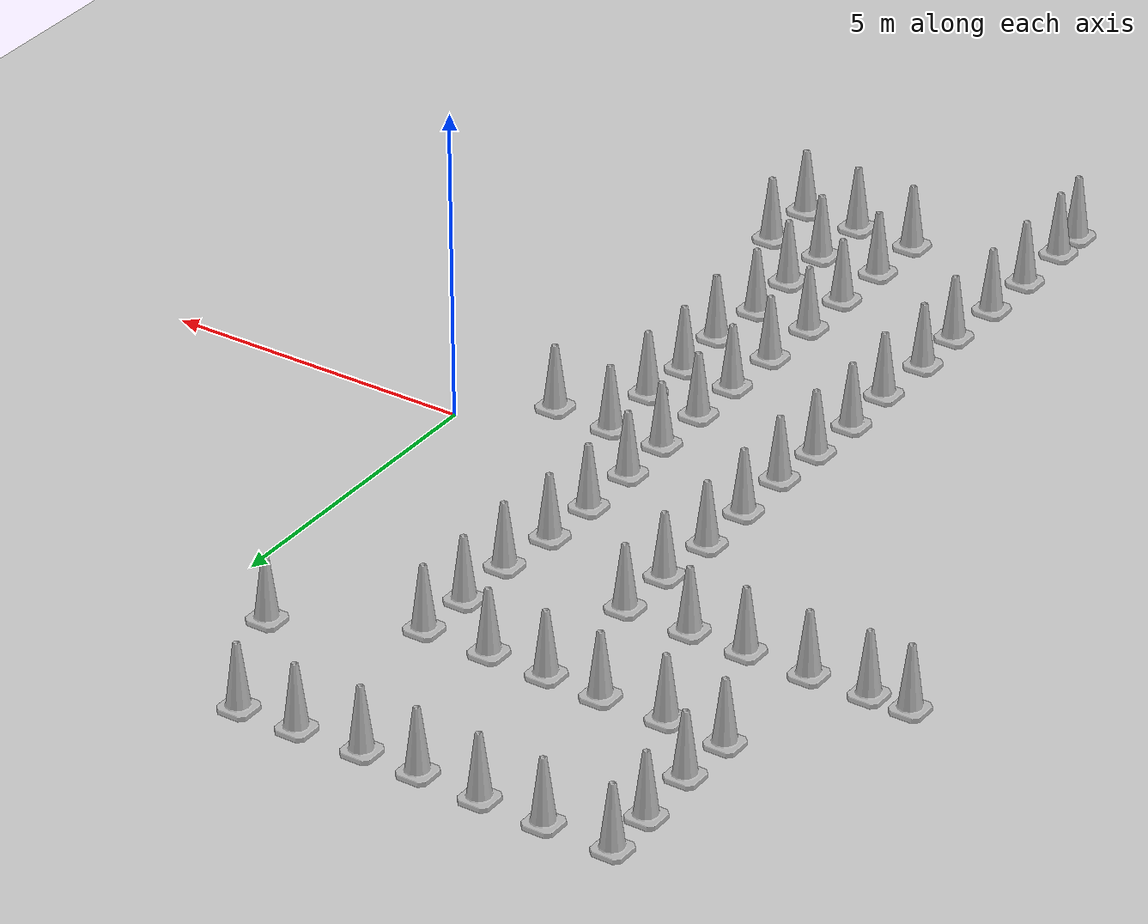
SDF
<sdf version="1.7">
 <world name="default">
  <model name="ground_plane">
   <static>1</static>
   <link name="link">
    <collision name="collision">
     <geometry><plane><normal>0 0 1</normal><size>100 100</size></plane></geometry>
     <surface>
      <contact><collide_bitmask>65535</collide_bitmask></contact>
      <friction><ode><mu>100</mu><mu2>50</mu2></ode></friction>
     </surface>
    </collision>
    <visual name="visual">
     <cast_shadows>0</cast_shadows>
     <geometry><plane><normal>0 0 1</normal><size>100 100</size></plane></geometry>
     <material>
      <script><uri>file://media/materials/scripts/gazebo.material</uri><name>Gazebo/Grey</name></script>
     </material>
    </visual>
   </link>
  </model>
  <model name="Construction Cone">
   <link name="link">
    <collision name="collision">
     <geometry>
      <mesh><scale>10 10 10</scale><uri>model://construction_cone/meshes/construction_cone.dae</uri></mesh>
     </geometry>
    </collision>
    <visual name="visual">
     <geometry>
      <mesh><scale>10 10 10</scale><uri>model://construction_cone/meshes/construction_cone.dae</uri></mesh>
     </geometry>
    </visual>
    <inertial>
     <inertia><ixx>1</ixx><ixy>0</ixy><ixz>0</ixz><iyy>1</iyy><iyz>0</iyz><izz>1</izz></inertia>
     <mass>1</mass>
    </inertial>
   </link>
   <pose>-1.01799 5.99458 -6e-06 -4e-06 1e-06 0</pose>
  </model>
  <model name="Construction Cone_clone_7">
   <link name="link">
    <collision name="collision">
     <geometry>
      <mesh><scale>10 10 10</scale><uri>model://construction_cone/meshes/construction_cone.dae</uri></mesh>
     </geometry>
    </collision>
    <visual name="visual">
     <geometry>
      <mesh><scale>10 10 10</scale><uri>model://construction_cone/meshes/construction_cone.dae</uri></mesh>
     </geometry>
    </visual>
    <inertial>
     <inertia><ixx>1</ixx><ixy>0</ixy><ixz>0</ixz><iyy>1</iyy><iyz>0</iyz><izz>1</izz></inertia>
     <mass>1</mass>
    </inertial>
   </link>
   <pose>-2.01651 7.99245 -0 0 -0 0</pose>
  </model>
  <model name="Construction Cone_clone_8">
   <link name="link">
    <collision name="collision">
     <geometry>
      <mesh><scale>10 10 10</scale><uri>model://construction_cone/meshes/construction_cone.dae</uri></mesh>
     </geometry>
    </collision>
    <visual name="visual">
     <geometry>
      <mesh><scale>10 10 10</scale><uri>model://construction_cone/meshes/construction_cone.dae</uri></mesh>
     </geometry>
    </visual>
    <inertial>
     <inertia><ixx>1</ixx><ixy>0</ixy><ixz>0</ixz><iyy>1</iyy><iyz>0</iyz><izz>1</izz></inertia>
     <mass>1</mass>
    </inertial>
   </link>
   <pose>-2.97184 7.96469 -8e-06 -6e-06 -0 -0</pose>
  </model>
  <model name="Construction Cone_clone_13">
   <link name="link">
    <collision name="collision">
     <geometry>
      <mesh><scale>10 10 10</scale><uri>model://construction_cone/meshes/construction_cone.dae</uri></mesh>
     </geometry>
    </collision>
    <visual name="visual">
     <geometry>
      <mesh><scale>10 10 10</scale><uri>model://construction_cone/meshes/construction_cone.dae</uri></mesh>
     </geometry>
    </visual>
    <inertial>
     <inertia><ixx>1</ixx><ixy>0</ixy><ixz>0</ixz><iyy>1</iyy><iyz>0</iyz><izz>1</izz></inertia>
     <mass>1</mass>
    </inertial>
   </link>
   <pose>-4.02289 7.91677 0 -0 -0 -0</pose>
  </model>
  <model name="Construction Cone_clone_14">
   <link name="link">
    <collision name="collision">
     <geometry>
      <mesh><scale>10 10 10</scale><uri>model://construction_cone/meshes/construction_cone.dae</uri></mesh>
     </geometry>
    </collision>
    <visual name="visual">
     <geometry>
      <mesh><scale>10 10 10</scale><uri>model://construction_cone/meshes/construction_cone.dae</uri></mesh>
     </geometry>
    </visual>
    <inertial>
     <inertia><ixx>1</ixx><ixy>0</ixy><ixz>0</ixz><iyy>1</iyy><iyz>0</iyz><izz>1</izz></inertia>
     <mass>1</mass>
    </inertial>
   </link>
   <pose>-4.94608 7.91863 -0 0 -0 0</pose>
  </model>
  <model name="Construction Cone_clone_15">
   <link name="link">
    <collision name="collision">
     <geometry>
      <mesh><scale>10 10 10</scale><uri>model://construction_cone/meshes/construction_cone.dae</uri></mesh>
     </geometry>
    </collision>
    <visual name="visual">
     <geometry>
      <mesh><scale>10 10 10</scale><uri>model://construction_cone/meshes/construction_cone.dae</uri></mesh>
     </geometry>
    </visual>
    <inertial>
     <inertia><ixx>1</ixx><ixy>0</ixy><ixz>0</ixz><iyy>1</iyy><iyz>0</iyz><izz>1</izz></inertia>
     <mass>1</mass>
    </inertial>
   </link>
   <pose>-5.97959 7.95857 -0 0 -0 0</pose>
  </model>
  <model name="Construction Cone_clone_16">
   <link name="link">
    <collision name="collision">
     <geometry>
      <mesh><scale>10 10 10</scale><uri>model://construction_cone/meshes/construction_cone.dae</uri></mesh>
     </geometry>
    </collision>
    <visual name="visual">
     <geometry>
      <mesh><scale>10 10 10</scale><uri>model://construction_cone/meshes/construction_cone.dae</uri></mesh>
     </geometry>
    </visual>
    <inertial>
     <inertia><ixx>1</ixx><ixy>0</ixy><ixz>0</ixz><iyy>1</iyy><iyz>0</iyz><izz>1</izz></inertia>
     <mass>1</mass>
    </inertial>
   </link>
   <pose>-7.01345 7.96661 -4e-06 4e-06 -1e-06 0</pose>
  </model>
  <model name="Construction Cone_clone_16_clone">
   <link name="link">
    <collision name="collision">
     <geometry>
      <mesh><scale>10 10 10</scale><uri>model://construction_cone/meshes/construction_cone.dae</uri></mesh>
     </geometry>
    </collision>
    <visual name="visual">
     <geometry>
      <mesh><scale>10 10 10</scale><uri>model://construction_cone/meshes/construction_cone.dae</uri></mesh>
     </geometry>
    </visual>
    <inertial>
     <inertia><ixx>1</ixx><ixy>0</ixy><ixz>0</ixz><iyy>1</iyy><iyz>0</iyz><izz>1</izz></inertia>
     <mass>1</mass>
    </inertial>
   </link>
   <pose>-8.10158 7.95749 0 -0 -0 -0</pose>
  </model>
  <model name="Construction Cone_clone_16_clone_0">
   <link name="link">
    <collision name="collision">
     <geometry>
      <mesh><scale>10 10 10</scale><uri>model://construction_cone/meshes/construction_cone.dae</uri></mesh>
     </geometry>
    </collision>
    <visual name="visual">
     <geometry>
      <mesh><scale>10 10 10</scale><uri>model://construction_cone/meshes/construction_cone.dae</uri></mesh>
     </geometry>
    </visual>
    <inertial>
     <inertia><ixx>1</ixx><ixy>0</ixy><ixz>0</ixz><iyy>1</iyy><iyz>0</iyz><izz>1</izz></inertia>
     <mass>1</mass>
    </inertial>
   </link>
   <pose>-8.05367 7.08406 -0 0 -0 0</pose>
  </model>
  <model name="Construction Cone_clone_16_clone_1">
   <link name="link">
    <collision name="collision">
     <geometry>
      <mesh><scale>10 10 10</scale><uri>model://construction_cone/meshes/construction_cone.dae</uri></mesh>
     </geometry>
    </collision>
    <visual name="visual">
     <geometry>
      <mesh><scale>10 10 10</scale><uri>model://construction_cone/meshes/construction_cone.dae</uri></mesh>
     </geometry>
    </visual>
    <inertial>
     <inertia><ixx>1</ixx><ixy>0</ixy><ixz>0</ixz><iyy>1</iyy><iyz>0</iyz><izz>1</izz></inertia>
     <mass>1</mass>
    </inertial>
   </link>
   <pose>-7.96652 6.00536 -0 0 -0 0</pose>
  </model>
  <model name="Construction Cone_clone_16_clone_2">
   <link name="link">
    <collision name="collision">
     <geometry>
      <mesh><scale>10 10 10</scale><uri>model://construction_cone/meshes/construction_cone.dae</uri></mesh>
     </geometry>
    </collision>
    <visual name="visual">
     <geometry>
      <mesh><scale>10 10 10</scale><uri>model://construction_cone/meshes/construction_cone.dae</uri></mesh>
     </geometry>
    </visual>
    <inertial>
     <inertia><ixx>1</ixx><ixy>0</ixy><ixz>0</ixz><iyy>1</iyy><iyz>0</iyz><izz>1</izz></inertia>
     <mass>1</mass>
    </inertial>
   </link>
   <pose>-7.98786 5.06189 -1e-06 2e-06 2e-06 0</pose>
  </model>
  <model name="Construction Cone_clone_16_clone_3">
   <link name="link">
    <collision name="collision">
     <geometry>
      <mesh><scale>10 10 10</scale><uri>model://construction_cone/meshes/construction_cone.dae</uri></mesh>
     </geometry>
    </collision>
    <visual name="visual">
     <geometry>
      <mesh><scale>10 10 10</scale><uri>model://construction_cone/meshes/construction_cone.dae</uri></mesh>
     </geometry>
    </visual>
    <inertial>
     <inertia><ixx>1</ixx><ixy>0</ixy><ixz>0</ixz><iyy>1</iyy><iyz>0</iyz><izz>1</izz></inertia>
     <mass>1</mass>
    </inertial>
   </link>
   <pose>-7.00541 5.00946 -0 0 -1e-06 0</pose>
  </model>
  <model name="Construction Cone_clone_16_clone_4">
   <link name="link">
    <collision name="collision">
     <geometry>
      <mesh><scale>10 10 10</scale><uri>model://construction_cone/meshes/construction_cone.dae</uri></mesh>
     </geometry>
    </collision>
    <visual name="visual">
     <geometry>
      <mesh><scale>10 10 10</scale><uri>model://construction_cone/meshes/construction_cone.dae</uri></mesh>
     </geometry>
    </visual>
    <inertial>
     <inertia><ixx>1</ixx><ixy>0</ixy><ixz>0</ixz><iyy>1</iyy><iyz>0</iyz><izz>1</izz></inertia>
     <mass>1</mass>
    </inertial>
   </link>
   <pose>-5.95433 5.0353 -0 0 -0 0</pose>
  </model>
  <model name="Construction Cone_clone_16_clone_5">
   <link name="link">
    <collision name="collision">
     <geometry>
      <mesh><scale>10 10 10</scale><uri>model://construction_cone/meshes/construction_cone.dae</uri></mesh>
     </geometry>
    </collision>
    <visual name="visual">
     <geometry>
      <mesh><scale>10 10 10</scale><uri>model://construction_cone/meshes/construction_cone.dae</uri></mesh>
     </geometry>
    </visual>
    <inertial>
     <inertia><ixx>1</ixx><ixy>0</ixy><ixz>0</ixz><iyy>1</iyy><iyz>0</iyz><izz>1</izz></inertia>
     <mass>1</mass>
    </inertial>
   </link>
   <pose>-5.03599 5.00389 -0 0 -0 0</pose>
  </model>
  <model name="Construction Cone_clone_16_clone_6">
   <link name="link">
    <collision name="collision">
     <geometry>
      <mesh><scale>10 10 10</scale><uri>model://construction_cone/meshes/construction_cone.dae</uri></mesh>
     </geometry>
    </collision>
    <visual name="visual">
     <geometry>
      <mesh><scale>10 10 10</scale><uri>model://construction_cone/meshes/construction_cone.dae</uri></mesh>
     </geometry>
    </visual>
    <inertial>
     <inertia><ixx>1</ixx><ixy>0</ixy><ixz>0</ixz><iyy>1</iyy><iyz>0</iyz><izz>1</izz></inertia>
     <mass>1</mass>
    </inertial>
   </link>
   <pose>-4.06945 4.98758 -0 0 -1e-06 0</pose>
  </model>
  <model name="Construction Cone_clone_16_clone_7">
   <link name="link">
    <collision name="collision">
     <geometry>
      <mesh><scale>10 10 10</scale><uri>model://construction_cone/meshes/construction_cone.dae</uri></mesh>
     </geometry>
    </collision>
    <visual name="visual">
     <geometry>
      <mesh><scale>10 10 10</scale><uri>model://construction_cone/meshes/construction_cone.dae</uri></mesh>
     </geometry>
    </visual>
    <inertial>
     <inertia><ixx>1</ixx><ixy>0</ixy><ixz>0</ixz><iyy>1</iyy><iyz>0</iyz><izz>1</izz></inertia>
     <mass>1</mass>
    </inertial>
   </link>
   <pose>-2.98074 4.99101 -5e-06 -4e-06 1e-06 0</pose>
  </model>
  <model name="Construction Cone_clone_16_clone_8">
   <link name="link">
    <collision name="collision">
     <geometry>
      <mesh><scale>10 10 10</scale><uri>model://construction_cone/meshes/construction_cone.dae</uri></mesh>
     </geometry>
    </collision>
    <visual name="visual">
     <geometry>
      <mesh><scale>10 10 10</scale><uri>model://construction_cone/meshes/construction_cone.dae</uri></mesh>
     </geometry>
    </visual>
    <inertial>
     <inertia><ixx>1</ixx><ixy>0</ixy><ixz>0</ixz><iyy>1</iyy><iyz>0</iyz><izz>1</izz></inertia>
     <mass>1</mass>
    </inertial>
   </link>
   <pose>-3.01413 4.06515 0 -0 -0 -0</pose>
  </model>
  <model name="Construction Cone_clone_16_clone_9">
   <link name="link">
    <collision name="collision">
     <geometry>
      <mesh><scale>10 10 10</scale><uri>model://construction_cone/meshes/construction_cone.dae</uri></mesh>
     </geometry>
    </collision>
    <visual name="visual">
     <geometry>
      <mesh><scale>10 10 10</scale><uri>model://construction_cone/meshes/construction_cone.dae</uri></mesh>
     </geometry>
    </visual>
    <inertial>
     <inertia><ixx>1</ixx><ixy>0</ixy><ixz>0</ixz><iyy>1</iyy><iyz>0</iyz><izz>1</izz></inertia>
     <mass>1</mass>
    </inertial>
   </link>
   <pose>-2.97922 3.02528 -0 0 -0 0</pose>
  </model>
  <model name="Construction Cone_clone_16_clone_10">
   <link name="link">
    <collision name="collision">
     <geometry>
      <mesh><scale>10 10 10</scale><uri>model://construction_cone/meshes/construction_cone.dae</uri></mesh>
     </geometry>
    </collision>
    <visual name="visual">
     <geometry>
      <mesh><scale>10 10 10</scale><uri>model://construction_cone/meshes/construction_cone.dae</uri></mesh>
     </geometry>
    </visual>
    <inertial>
     <inertia><ixx>1</ixx><ixy>0</ixy><ixz>0</ixz><iyy>1</iyy><iyz>0</iyz><izz>1</izz></inertia>
     <mass>1</mass>
    </inertial>
   </link>
   <pose>-3.08255 2.04324 -0 0 -0 0</pose>
  </model>
  <model name="Construction Cone_clone_16_clone_11">
   <link name="link">
    <collision name="collision">
     <geometry>
      <mesh><scale>10 10 10</scale><uri>model://construction_cone/meshes/construction_cone.dae</uri></mesh>
     </geometry>
    </collision>
    <visual name="visual">
     <geometry>
      <mesh><scale>10 10 10</scale><uri>model://construction_cone/meshes/construction_cone.dae</uri></mesh>
     </geometry>
    </visual>
    <inertial>
     <inertia><ixx>1</ixx><ixy>0</ixy><ixz>0</ixz><iyy>1</iyy><iyz>0</iyz><izz>1</izz></inertia>
     <mass>1</mass>
    </inertial>
   </link>
   <pose>-3.08639 1.06079 0 -0 -0 -0</pose>
  </model>
  <model name="Construction Cone_clone_16_clone_12">
   <link name="link">
    <collision name="collision">
     <geometry>
      <mesh><scale>10 10 10</scale><uri>model://construction_cone/meshes/construction_cone.dae</uri></mesh>
     </geometry>
    </collision>
    <visual name="visual">
     <geometry>
      <mesh><scale>10 10 10</scale><uri>model://construction_cone/meshes/construction_cone.dae</uri></mesh>
     </geometry>
    </visual>
    <inertial>
     <inertia><ixx>1</ixx><ixy>0</ixy><ixz>0</ixz><iyy>1</iyy><iyz>0</iyz><izz>1</izz></inertia>
     <mass>1</mass>
    </inertial>
   </link>
   <pose>-3.06053 0.003845 -0 0 -0 0</pose>
  </model>
  <model name="Construction Cone_clone_16_clone_13">
   <link name="link">
    <collision name="collision">
     <geometry>
      <mesh><scale>10 10 10</scale><uri>model://construction_cone/meshes/construction_cone.dae</uri></mesh>
     </geometry>
    </collision>
    <visual name="visual">
     <geometry>
      <mesh><scale>10 10 10</scale><uri>model://construction_cone/meshes/construction_cone.dae</uri></mesh>
     </geometry>
    </visual>
    <inertial>
     <inertia><ixx>1</ixx><ixy>0</ixy><ixz>0</ixz><iyy>1</iyy><iyz>0</iyz><izz>1</izz></inertia>
     <mass>1</mass>
    </inertial>
   </link>
   <pose>-3.01618 -0.949933 0 -0 -0 -0</pose>
  </model>
  <model name="Construction Cone_clone_16_clone_14">
   <link name="link">
    <collision name="collision">
     <geometry>
      <mesh><scale>10 10 10</scale><uri>model://construction_cone/meshes/construction_cone.dae</uri></mesh>
     </geometry>
    </collision>
    <visual name="visual">
     <geometry>
      <mesh><scale>10 10 10</scale><uri>model://construction_cone/meshes/construction_cone.dae</uri></mesh>
     </geometry>
    </visual>
    <inertial>
     <inertia><ixx>1</ixx><ixy>0</ixy><ixz>0</ixz><iyy>1</iyy><iyz>0</iyz><izz>1</izz></inertia>
     <mass>1</mass>
    </inertial>
   </link>
   <pose>-4.95464 -1.09419 -0 0 -1e-06 0</pose>
  </model>
  <model name="Construction Cone_clone_16_clone_15">
   <link name="link">
    <collision name="collision">
     <geometry>
      <mesh><scale>10 10 10</scale><uri>model://construction_cone/meshes/construction_cone.dae</uri></mesh>
     </geometry>
    </collision>
    <visual name="visual">
     <geometry>
      <mesh><scale>10 10 10</scale><uri>model://construction_cone/meshes/construction_cone.dae</uri></mesh>
     </geometry>
    </visual>
    <inertial>
     <inertia><ixx>1</ixx><ixy>0</ixy><ixz>0</ixz><iyy>1</iyy><iyz>0</iyz><izz>1</izz></inertia>
     <mass>1</mass>
    </inertial>
   </link>
   <pose>-5.00732 -0.05172 -1e-05 -0 -0 -0</pose>
  </model>
  <model name="Construction Cone_clone_16_clone_16">
   <link name="link">
    <collision name="collision">
     <geometry>
      <mesh><scale>10 10 10</scale><uri>model://construction_cone/meshes/construction_cone.dae</uri></mesh>
     </geometry>
    </collision>
    <visual name="visual">
     <geometry>
      <mesh><scale>10 10 10</scale><uri>model://construction_cone/meshes/construction_cone.dae</uri></mesh>
     </geometry>
    </visual>
    <inertial>
     <inertia><ixx>1</ixx><ixy>0</ixy><ixz>0</ixz><iyy>1</iyy><iyz>0</iyz><izz>1</izz></inertia>
     <mass>1</mass>
    </inertial>
   </link>
   <pose>-5.04654 0.972501 -1e-05 0 -0 0</pose>
  </model>
  <model name="Construction Cone_clone_16_clone_17">
   <link name="link">
    <collision name="collision">
     <geometry>
      <mesh><scale>10 10 10</scale><uri>model://construction_cone/meshes/construction_cone.dae</uri></mesh>
     </geometry>
    </collision>
    <visual name="visual">
     <geometry>
      <mesh><scale>10 10 10</scale><uri>model://construction_cone/meshes/construction_cone.dae</uri></mesh>
     </geometry>
    </visual>
    <inertial>
     <inertia><ixx>1</ixx><ixy>0</ixy><ixz>0</ixz><iyy>1</iyy><iyz>0</iyz><izz>1</izz></inertia>
     <mass>1</mass>
    </inertial>
   </link>
   <pose>-4.99937 1.99483 -0 0 -1e-06 0</pose>
  </model>
  <model name="Construction Cone_clone_16_clone_18">
   <link name="link">
    <collision name="collision">
     <geometry>
      <mesh><scale>10 10 10</scale><uri>model://construction_cone/meshes/construction_cone.dae</uri></mesh>
     </geometry>
    </collision>
    <visual name="visual">
     <geometry>
      <mesh><scale>10 10 10</scale><uri>model://construction_cone/meshes/construction_cone.dae</uri></mesh>
     </geometry>
    </visual>
    <inertial>
     <inertia><ixx>1</ixx><ixy>0</ixy><ixz>0</ixz><iyy>1</iyy><iyz>0</iyz><izz>1</izz></inertia>
     <mass>1</mass>
    </inertial>
   </link>
   <pose>-4.99962 2.99472 0 -0 -0 -0</pose>
  </model>
  <model name="Construction Cone_clone_16_clone_19">
   <link name="link">
    <collision name="collision">
     <geometry>
      <mesh><scale>10 10 10</scale><uri>model://construction_cone/meshes/construction_cone.dae</uri></mesh>
     </geometry>
    </collision>
    <visual name="visual">
     <geometry>
      <mesh><scale>10 10 10</scale><uri>model://construction_cone/meshes/construction_cone.dae</uri></mesh>
     </geometry>
    </visual>
    <inertial>
     <inertia><ixx>1</ixx><ixy>0</ixy><ixz>0</ixz><iyy>1</iyy><iyz>0</iyz><izz>1</izz></inertia>
     <mass>1</mass>
    </inertial>
   </link>
   <pose>-6.0715 2.99243 -0 0 -1e-06 0</pose>
  </model>
  <model name="Construction Cone_clone_16_clone_20">
   <link name="link">
    <collision name="collision">
     <geometry>
      <mesh><scale>10 10 10</scale><uri>model://construction_cone/meshes/construction_cone.dae</uri></mesh>
     </geometry>
    </collision>
    <visual name="visual">
     <geometry>
      <mesh><scale>10 10 10</scale><uri>model://construction_cone/meshes/construction_cone.dae</uri></mesh>
     </geometry>
    </visual>
    <inertial>
     <inertia><ixx>1</ixx><ixy>0</ixy><ixz>0</ixz><iyy>1</iyy><iyz>0</iyz><izz>1</izz></inertia>
     <mass>1</mass>
    </inertial>
   </link>
   <pose>-7 3 0 -0 -0 -0</pose>
  </model>
  <model name="Construction Cone_clone_16_clone_21">
   <link name="link">
    <collision name="collision">
     <geometry>
      <mesh><scale>10 10 10</scale><uri>model://construction_cone/meshes/construction_cone.dae</uri></mesh>
     </geometry>
    </collision>
    <visual name="visual">
     <geometry>
      <mesh><scale>10 10 10</scale><uri>model://construction_cone/meshes/construction_cone.dae</uri></mesh>
     </geometry>
    </visual>
    <inertial>
     <inertia><ixx>1</ixx><ixy>0</ixy><ixz>0</ixz><iyy>1</iyy><iyz>0</iyz><izz>1</izz></inertia>
     <mass>1</mass>
    </inertial>
   </link>
   <pose>-8.03271 3.01123 -0 0 -1e-06 0</pose>
  </model>
  <model name="Construction Cone_clone_16_clone_22">
   <link name="link">
    <collision name="collision">
     <geometry>
      <mesh><scale>10 10 10</scale><uri>model://construction_cone/meshes/construction_cone.dae</uri></mesh>
     </geometry>
    </collision>
    <visual name="visual">
     <geometry>
      <mesh><scale>10 10 10</scale><uri>model://construction_cone/meshes/construction_cone.dae</uri></mesh>
     </geometry>
    </visual>
    <inertial>
     <inertia><ixx>1</ixx><ixy>0</ixy><ixz>0</ixz><iyy>1</iyy><iyz>0</iyz><izz>1</izz></inertia>
     <mass>1</mass>
    </inertial>
   </link>
   <pose>-8.98005 2.97926 -0 0 -1e-06 0</pose>
  </model>
  <model name="Construction Cone_clone_16_clone_23">
   <link name="link">
    <collision name="collision">
     <geometry>
      <mesh><scale>10 10 10</scale><uri>model://construction_cone/meshes/construction_cone.dae</uri></mesh>
     </geometry>
    </collision>
    <visual name="visual">
     <geometry>
      <mesh><scale>10 10 10</scale><uri>model://construction_cone/meshes/construction_cone.dae</uri></mesh>
     </geometry>
    </visual>
    <inertial>
     <inertia><ixx>1</ixx><ixy>0</ixy><ixz>0</ixz><iyy>1</iyy><iyz>0</iyz><izz>1</izz></inertia>
     <mass>1</mass>
    </inertial>
   </link>
   <pose>-9.63265 2.96495 -0 0 -0 0</pose>
  </model>
  <model name="Construction Cone_clone_16_clone_24">
   <link name="link">
    <collision name="collision">
     <geometry>
      <mesh><scale>10 10 10</scale><uri>model://construction_cone/meshes/construction_cone.dae</uri></mesh>
     </geometry>
    </collision>
    <visual name="visual">
     <geometry>
      <mesh><scale>10 10 10</scale><uri>model://construction_cone/meshes/construction_cone.dae</uri></mesh>
     </geometry>
    </visual>
    <inertial>
     <inertia><ixx>1</ixx><ixy>0</ixy><ixz>0</ixz><iyy>1</iyy><iyz>0</iyz><izz>1</izz></inertia>
     <mass>1</mass>
    </inertial>
   </link>
   <pose>-5 -2 -0 0 -0 0</pose>
  </model>
  <model name="Construction Cone_clone_16_clone_25">
   <link name="link">
    <collision name="collision">
     <geometry>
      <mesh><scale>10 10 10</scale><uri>model://construction_cone/meshes/construction_cone.dae</uri></mesh>
     </geometry>
    </collision>
    <visual name="visual">
     <geometry>
      <mesh><scale>10 10 10</scale><uri>model://construction_cone/meshes/construction_cone.dae</uri></mesh>
     </geometry>
    </visual>
    <inertial>
     <inertia><ixx>1</ixx><ixy>0</ixy><ixz>0</ixz><iyy>1</iyy><iyz>0</iyz><izz>1</izz></inertia>
     <mass>1</mass>
    </inertial>
   </link>
   <pose>-2.9971 -1.95587 -0 -0 -0 -0</pose>
  </model>
  <model name="Construction Cone_clone_16_clone_26">
   <link name="link">
    <collision name="collision">
     <geometry>
      <mesh><scale>10 10 10</scale><uri>model://construction_cone/meshes/construction_cone.dae</uri></mesh>
     </geometry>
    </collision>
    <visual name="visual">
     <geometry>
      <mesh><scale>10 10 10</scale><uri>model://construction_cone/meshes/construction_cone.dae</uri></mesh>
     </geometry>
    </visual>
    <inertial>
     <inertia><ixx>1</ixx><ixy>0</ixy><ixz>0</ixz><iyy>1</iyy><iyz>0</iyz><izz>1</izz></inertia>
     <mass>1</mass>
    </inertial>
   </link>
   <pose>-2.9779 -2.90922 -1e-06 3e-06 -1e-06 0</pose>
  </model>
  <model name="Construction Cone_clone_16_clone_27">
   <link name="link">
    <collision name="collision">
     <geometry>
      <mesh><scale>10 10 10</scale><uri>model://construction_cone/meshes/construction_cone.dae</uri></mesh>
     </geometry>
    </collision>
    <visual name="visual">
     <geometry>
      <mesh><scale>10 10 10</scale><uri>model://construction_cone/meshes/construction_cone.dae</uri></mesh>
     </geometry>
    </visual>
    <inertial>
     <inertia><ixx>1</ixx><ixy>0</ixy><ixz>0</ixz><iyy>1</iyy><iyz>0</iyz><izz>1</izz></inertia>
     <mass>1</mass>
    </inertial>
   </link>
   <pose>-5.02675 -2.94747 -0 0 -0 0</pose>
  </model>
  <model name="Construction Cone_clone_16_clone_28">
   <link name="link">
    <collision name="collision">
     <geometry>
      <mesh><scale>10 10 10</scale><uri>model://construction_cone/meshes/construction_cone.dae</uri></mesh>
     </geometry>
    </collision>
    <visual name="visual">
     <geometry>
      <mesh><scale>10 10 10</scale><uri>model://construction_cone/meshes/construction_cone.dae</uri></mesh>
     </geometry>
    </visual>
    <inertial>
     <inertia><ixx>1</ixx><ixy>0</ixy><ixz>0</ixz><iyy>1</iyy><iyz>0</iyz><izz>1</izz></inertia>
     <mass>1</mass>
    </inertial>
   </link>
   <pose>-2.99086 -3.93175 -0 0 -1e-06 0</pose>
  </model>
  <model name="Construction Cone_clone_16_clone_29">
   <link name="link">
    <collision name="collision">
     <geometry>
      <mesh><scale>10 10 10</scale><uri>model://construction_cone/meshes/construction_cone.dae</uri></mesh>
     </geometry>
    </collision>
    <visual name="visual">
     <geometry>
      <mesh><scale>10 10 10</scale><uri>model://construction_cone/meshes/construction_cone.dae</uri></mesh>
     </geometry>
    </visual>
    <inertial>
     <inertia><ixx>1</ixx><ixy>0</ixy><ixz>0</ixz><iyy>1</iyy><iyz>0</iyz><izz>1</izz></inertia>
     <mass>1</mass>
    </inertial>
   </link>
   <pose>-4.96281 -3.9539 0 -0 -0 -0</pose>
  </model>
  <model name="Construction Cone_clone_16_clone_30">
   <link name="link">
    <collision name="collision">
     <geometry>
      <mesh><scale>10 10 10</scale><uri>model://construction_cone/meshes/construction_cone.dae</uri></mesh>
     </geometry>
    </collision>
    <visual name="visual">
     <geometry>
      <mesh><scale>10 10 10</scale><uri>model://construction_cone/meshes/construction_cone.dae</uri></mesh>
     </geometry>
    </visual>
    <inertial>
     <inertia><ixx>1</ixx><ixy>0</ixy><ixz>0</ixz><iyy>1</iyy><iyz>0</iyz><izz>1</izz></inertia>
     <mass>1</mass>
    </inertial>
   </link>
   <pose>-3.00531 -4.98866 -5e-06 -4e-06 1e-06 0</pose>
  </model>
  <model name="Construction Cone_clone_16_clone_31">
   <link name="link">
    <collision name="collision">
     <geometry>
      <mesh><scale>10 10 10</scale><uri>model://construction_cone/meshes/construction_cone.dae</uri></mesh>
     </geometry>
    </collision>
    <visual name="visual">
     <geometry>
      <mesh><scale>10 10 10</scale><uri>model://construction_cone/meshes/construction_cone.dae</uri></mesh>
     </geometry>
    </visual>
    <inertial>
     <inertia><ixx>1</ixx><ixy>0</ixy><ixz>0</ixz><iyy>1</iyy><iyz>0</iyz><izz>1</izz></inertia>
     <mass>1</mass>
    </inertial>
   </link>
   <pose>-4.9963 -5.0118 0 -0 -0 -0</pose>
  </model>
  <model name="Construction Cone_clone_16_clone_32">
   <link name="link">
    <collision name="collision">
     <geometry>
      <mesh><scale>10 10 10</scale><uri>model://construction_cone/meshes/construction_cone.dae</uri></mesh>
     </geometry>
    </collision>
    <visual name="visual">
     <geometry>
      <mesh><scale>10 10 10</scale><uri>model://construction_cone/meshes/construction_cone.dae</uri></mesh>
     </geometry>
    </visual>
    <inertial>
     <inertia><ixx>1</ixx><ixy>0</ixy><ixz>0</ixz><iyy>1</iyy><iyz>0</iyz><izz>1</izz></inertia>
     <mass>1</mass>
    </inertial>
   </link>
   <pose>-2.97008 -5.99304 -0 0 -0 0</pose>
  </model>
  <model name="Construction Cone_clone_16_clone_33">
   <link name="link">
    <collision name="collision">
     <geometry>
      <mesh><scale>10 10 10</scale><uri>model://construction_cone/meshes/construction_cone.dae</uri></mesh>
     </geometry>
    </collision>
    <visual name="visual">
     <geometry>
      <mesh><scale>10 10 10</scale><uri>model://construction_cone/meshes/construction_cone.dae</uri></mesh>
     </geometry>
    </visual>
    <inertial>
     <inertia><ixx>1</ixx><ixy>0</ixy><ixz>0</ixz><iyy>1</iyy><iyz>0</iyz><izz>1</izz></inertia>
     <mass>1</mass>
    </inertial>
   </link>
   <pose>-4.95897 -5.96865 -5e-06 -4e-06 1e-06 0</pose>
  </model>
  <model name="Construction Cone_clone_16_clone_34">
   <link name="link">
    <collision name="collision">
     <geometry>
      <mesh><scale>10 10 10</scale><uri>model://construction_cone/meshes/construction_cone.dae</uri></mesh>
     </geometry>
    </collision>
    <visual name="visual">
     <geometry>
      <mesh><scale>10 10 10</scale><uri>model://construction_cone/meshes/construction_cone.dae</uri></mesh>
     </geometry>
    </visual>
    <inertial>
     <inertia><ixx>1</ixx><ixy>0</ixy><ixz>0</ixz><iyy>1</iyy><iyz>0</iyz><izz>1</izz></inertia>
     <mass>1</mass>
    </inertial>
   </link>
   <pose>-2.98774 -7.00257 -0 0 -1e-06 0</pose>
  </model>
  <model name="Construction Cone_clone_16_clone_35">
   <link name="link">
    <collision name="collision">
     <geometry>
      <mesh><scale>10 10 10</scale><uri>model://construction_cone/meshes/construction_cone.dae</uri></mesh>
     </geometry>
    </collision>
    <visual name="visual">
     <geometry>
      <mesh><scale>10 10 10</scale><uri>model://construction_cone/meshes/construction_cone.dae</uri></mesh>
     </geometry>
    </visual>
    <inertial>
     <inertia><ixx>1</ixx><ixy>0</ixy><ixz>0</ixz><iyy>1</iyy><iyz>0</iyz><izz>1</izz></inertia>
     <mass>1</mass>
    </inertial>
   </link>
   <pose>-5.00679 -6.99197 -3e-06 -3e-06 -1e-06 -0</pose>
  </model>
  <model name="Construction Cone_clone_16_clone_36">
   <link name="link">
    <collision name="collision">
     <geometry>
      <mesh><scale>10 10 10</scale><uri>model://construction_cone/meshes/construction_cone.dae</uri></mesh>
     </geometry>
    </collision>
    <visual name="visual">
     <geometry>
      <mesh><scale>10 10 10</scale><uri>model://construction_cone/meshes/construction_cone.dae</uri></mesh>
     </geometry>
    </visual>
    <inertial>
     <inertia><ixx>1</ixx><ixy>0</ixy><ixz>0</ixz><iyy>1</iyy><iyz>0</iyz><izz>1</izz></inertia>
     <mass>1</mass>
    </inertial>
   </link>
   <pose>-2.98773 -8.00367 -8e-06 1e-06 -0 0</pose>
  </model>
  <model name="Construction Cone_clone_16_clone_37">
   <link name="link">
    <collision name="collision">
     <geometry>
      <mesh><scale>10 10 10</scale><uri>model://construction_cone/meshes/construction_cone.dae</uri></mesh>
     </geometry>
    </collision>
    <visual name="visual">
     <geometry>
      <mesh><scale>10 10 10</scale><uri>model://construction_cone/meshes/construction_cone.dae</uri></mesh>
     </geometry>
    </visual>
    <inertial>
     <inertia><ixx>1</ixx><ixy>0</ixy><ixz>0</ixz><iyy>1</iyy><iyz>0</iyz><izz>1</izz></inertia>
     <mass>1</mass>
    </inertial>
   </link>
   <pose>-5 -8 -8e-06 -5e-06 -0 -0</pose>
  </model>
  <model name="Construction Cone_clone_16_clone_38">
   <link name="link">
    <collision name="collision">
     <geometry>
      <mesh><scale>10 10 10</scale><uri>model://construction_cone/meshes/construction_cone.dae</uri></mesh>
     </geometry>
    </collision>
    <visual name="visual">
     <geometry>
      <mesh><scale>10 10 10</scale><uri>model://construction_cone/meshes/construction_cone.dae</uri></mesh>
     </geometry>
    </visual>
    <inertial>
     <inertia><ixx>1</ixx><ixy>0</ixy><ixz>0</ixz><iyy>1</iyy><iyz>0</iyz><izz>1</izz></inertia>
     <mass>1</mass>
    </inertial>
   </link>
   <pose>-1.02304 -8.05975 -9e-06 1e-06 -1e-06 0</pose>
  </model>
  <model name="Construction Cone_clone_16_clone_39">
   <link name="link">
    <collision name="collision">
     <geometry>
      <mesh><scale>10 10 10</scale><uri>model://construction_cone/meshes/construction_cone.dae</uri></mesh>
     </geometry>
    </collision>
    <visual name="visual">
     <geometry>
      <mesh><scale>10 10 10</scale><uri>model://construction_cone/meshes/construction_cone.dae</uri></mesh>
     </geometry>
    </visual>
    <inertial>
     <inertia><ixx>1</ixx><ixy>0</ixy><ixz>0</ixz><iyy>1</iyy><iyz>0</iyz><izz>1</izz></inertia>
     <mass>1</mass>
    </inertial>
   </link>
   <pose>-4.98064 -9.05839 -3e-06 -3e-06 -1e-06 -0</pose>
  </model>
  <model name="Construction Cone_clone_16_clone_40">
   <link name="link">
    <collision name="collision">
     <geometry>
      <mesh><scale>10 10 10</scale><uri>model://construction_cone/meshes/construction_cone.dae</uri></mesh>
     </geometry>
    </collision>
    <visual name="visual">
     <geometry>
      <mesh><scale>10 10 10</scale><uri>model://construction_cone/meshes/construction_cone.dae</uri></mesh>
     </geometry>
    </visual>
    <inertial>
     <inertia><ixx>1</ixx><ixy>0</ixy><ixz>0</ixz><iyy>1</iyy><iyz>0</iyz><izz>1</izz></inertia>
     <mass>1</mass>
    </inertial>
   </link>
   <pose>-4.95094 -9.66216 -0 0 0 -1.7e-05</pose>
  </model>
  <model name="Construction Cone_clone_16_clone_41">
   <link name="link">
    <collision name="collision">
     <geometry>
      <mesh><scale>10 10 10</scale><uri>model://construction_cone/meshes/construction_cone.dae</uri></mesh>
     </geometry>
    </collision>
    <visual name="visual">
     <geometry>
      <mesh><scale>10 10 10</scale><uri>model://construction_cone/meshes/construction_cone.dae</uri></mesh>
     </geometry>
    </visual>
    <inertial>
     <inertia><ixx>1</ixx><ixy>0</ixy><ixz>0</ixz><iyy>1</iyy><iyz>0</iyz><izz>1</izz></inertia>
     <mass>1</mass>
    </inertial>
   </link>
   <pose>-1.9826 -8.03378 -0 0 -1e-06 0</pose>
  </model>
  <model name="Construction Cone_clone_16_clone_71">
   <link name="link">
    <collision name="collision">
     <geometry>
      <mesh><scale>10 10 10</scale><uri>model://construction_cone/meshes/construction_cone.dae</uri></mesh>
     </geometry>
    </collision>
    <visual name="visual">
     <geometry>
      <mesh><scale>10 10 10</scale><uri>model://construction_cone/meshes/construction_cone.dae</uri></mesh>
     </geometry>
    </visual>
    <inertial>
     <inertia><ixx>1</ixx><ixy>0</ixy><ixz>0</ixz><iyy>1</iyy><iyz>0</iyz><izz>1</izz></inertia>
     <mass>1</mass>
    </inertial>
   </link>
   <pose>-1.05377 -7.0235 -6e-06 -4e-06 0 0</pose>
  </model>
  <model name="Construction Cone_clone_16_clone_72">
   <link name="link">
    <collision name="collision">
     <geometry>
      <mesh><scale>10 10 10</scale><uri>model://construction_cone/meshes/construction_cone.dae</uri></mesh>
     </geometry>
    </collision>
    <visual name="visual">
     <geometry>
      <mesh><scale>10 10 10</scale><uri>model://construction_cone/meshes/construction_cone.dae</uri></mesh>
     </geometry>
    </visual>
    <inertial>
     <inertia><ixx>1</ixx><ixy>0</ixy><ixz>0</ixz><iyy>1</iyy><iyz>0</iyz><izz>1</izz></inertia>
     <mass>1</mass>
    </inertial>
   </link>
   <pose>-1.98356 -6.97147 -0 0 -0 0</pose>
  </model>
  <model name="Construction Cone_clone_16_clone_73">
   <link name="link">
    <collision name="collision">
     <geometry>
      <mesh><scale>10 10 10</scale><uri>model://construction_cone/meshes/construction_cone.dae</uri></mesh>
     </geometry>
    </collision>
    <visual name="visual">
     <geometry>
      <mesh><scale>10 10 10</scale><uri>model://construction_cone/meshes/construction_cone.dae</uri></mesh>
     </geometry>
    </visual>
    <inertial>
     <inertia><ixx>1</ixx><ixy>0</ixy><ixz>0</ixz><iyy>1</iyy><iyz>0</iyz><izz>1</izz></inertia>
     <mass>1</mass>
    </inertial>
   </link>
   <pose>-1.98693 -6.02465 -4e-06 4e-06 -1e-06 0</pose>
  </model>
  <model name="Construction Cone_clone_16_clone_74">
   <link name="link">
    <collision name="collision">
     <geometry>
      <mesh><scale>10 10 10</scale><uri>model://construction_cone/meshes/construction_cone.dae</uri></mesh>
     </geometry>
    </collision>
    <visual name="visual">
     <geometry>
      <mesh><scale>10 10 10</scale><uri>model://construction_cone/meshes/construction_cone.dae</uri></mesh>
     </geometry>
    </visual>
    <inertial>
     <inertia><ixx>1</ixx><ixy>0</ixy><ixz>0</ixz><iyy>1</iyy><iyz>0</iyz><izz>1</izz></inertia>
     <mass>1</mass>
    </inertial>
   </link>
   <pose>-2.05517 -5.01669 -1e-05 0 -0 0</pose>
  </model>
  <model name="Construction Cone_clone_16_clone_75">
   <link name="link">
    <collision name="collision">
     <geometry>
      <mesh><scale>10 10 10</scale><uri>model://construction_cone/meshes/construction_cone.dae</uri></mesh>
     </geometry>
    </collision>
    <visual name="visual">
     <geometry>
      <mesh><scale>10 10 10</scale><uri>model://construction_cone/meshes/construction_cone.dae</uri></mesh>
     </geometry>
    </visual>
    <inertial>
     <inertia><ixx>1</ixx><ixy>0</ixy><ixz>0</ixz><iyy>1</iyy><iyz>0</iyz><izz>1</izz></inertia>
     <mass>1</mass>
    </inertial>
   </link>
   <pose>-1.97732 -4.01905 -0 0 -0 0</pose>
  </model>
  <model name="Construction Cone_clone_16_clone_77">
   <link name="link">
    <collision name="collision">
     <geometry>
      <mesh><scale>10 10 10</scale><uri>model://construction_cone/meshes/construction_cone.dae</uri></mesh>
     </geometry>
    </collision>
    <visual name="visual">
     <geometry>
      <mesh><scale>10 10 10</scale><uri>model://construction_cone/meshes/construction_cone.dae</uri></mesh>
     </geometry>
    </visual>
    <inertial>
     <inertia><ixx>1</ixx><ixy>0</ixy><ixz>0</ixz><iyy>1</iyy><iyz>0</iyz><izz>1</izz></inertia>
     <mass>1</mass>
    </inertial>
   </link>
   <pose>-2.08415 -2.9787 -5e-06 -4e-06 1e-06 0</pose>
  </model>
  <model name="Construction Cone_clone_16_clone_79">
   <link name="link">
    <collision name="collision">
     <geometry>
      <mesh><scale>10 10 10</scale><uri>model://construction_cone/meshes/construction_cone.dae</uri></mesh>
     </geometry>
    </collision>
    <visual name="visual">
     <geometry>
      <mesh><scale>10 10 10</scale><uri>model://construction_cone/meshes/construction_cone.dae</uri></mesh>
     </geometry>
    </visual>
    <inertial>
     <inertia><ixx>1</ixx><ixy>0</ixy><ixz>0</ixz><iyy>1</iyy><iyz>0</iyz><izz>1</izz></inertia>
     <mass>1</mass>
    </inertial>
   </link>
   <pose>-2.04757 -2.05925 -0 0 -1e-06 0</pose>
  </model>
  <model name="Construction Cone_clone_16_clone_80_clone">
   <link name="link">
    <collision name="collision">
     <geometry>
      <mesh><scale>10 10 10</scale><uri>model://construction_cone/meshes/construction_cone.dae</uri></mesh>
     </geometry>
    </collision>
    <visual name="visual">
     <geometry>
      <mesh><scale>10 10 10</scale><uri>model://construction_cone/meshes/construction_cone.dae</uri></mesh>
     </geometry>
    </visual>
    <inertial>
     <inertia><ixx>1</ixx><ixy>0</ixy><ixz>0</ixz><iyy>1</iyy><iyz>0</iyz><izz>1</izz></inertia>
     <mass>1</mass>
    </inertial>
   </link>
   <pose>-2.13071 -0.935207 -0 0 -0 0</pose>
  </model>
  <model name="Construction Cone_clone_16_clone_80_clone_1">
   <link name="link">
    <collision name="collision">
     <geometry>
      <mesh><scale>10 10 10</scale><uri>model://construction_cone/meshes/construction_cone.dae</uri></mesh>
     </geometry>
    </collision>
    <visual name="visual">
     <geometry>
      <mesh><scale>10 10 10</scale><uri>model://construction_cone/meshes/construction_cone.dae</uri></mesh>
     </geometry>
    </visual>
    <inertial>
     <inertia><ixx>1</ixx><ixy>0</ixy><ixz>0</ixz><iyy>1</iyy><iyz>0</iyz><izz>1</izz></inertia>
     <mass>1</mass>
    </inertial>
   </link>
   <pose>-1.12786 -0.972677 0 -0 -0 -0</pose>
  </model>
 </world>
</sdf>
